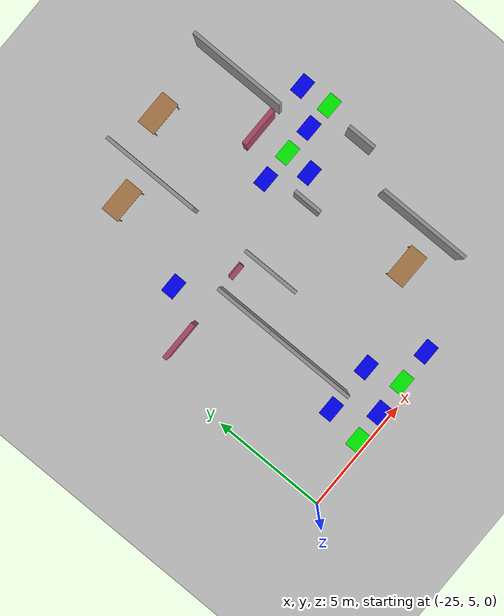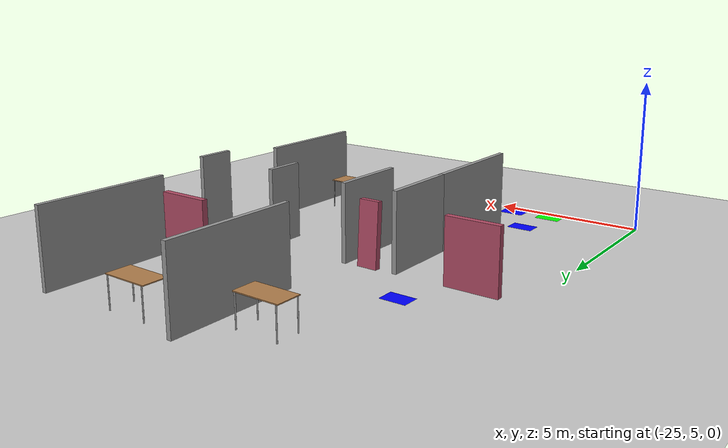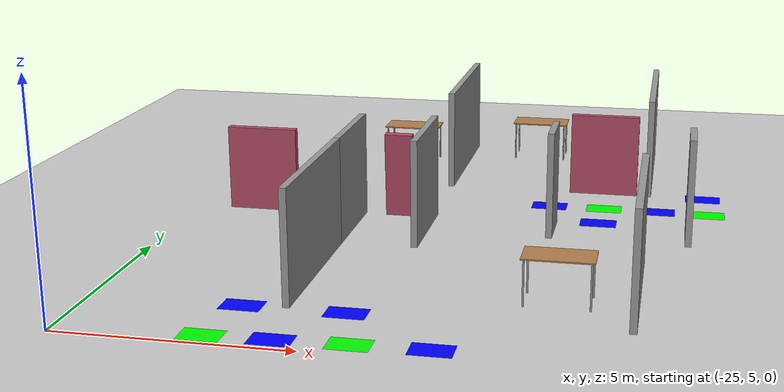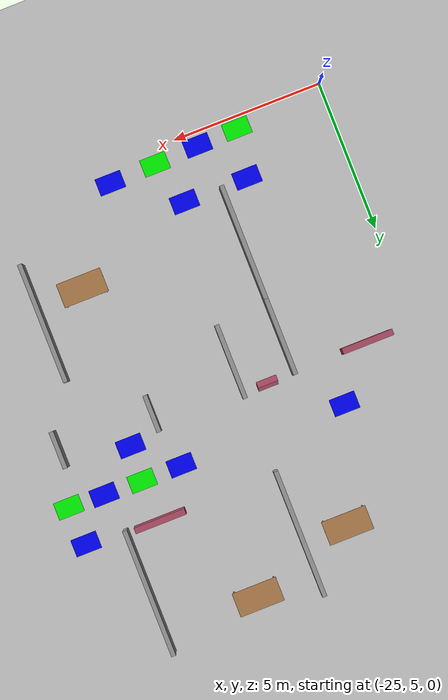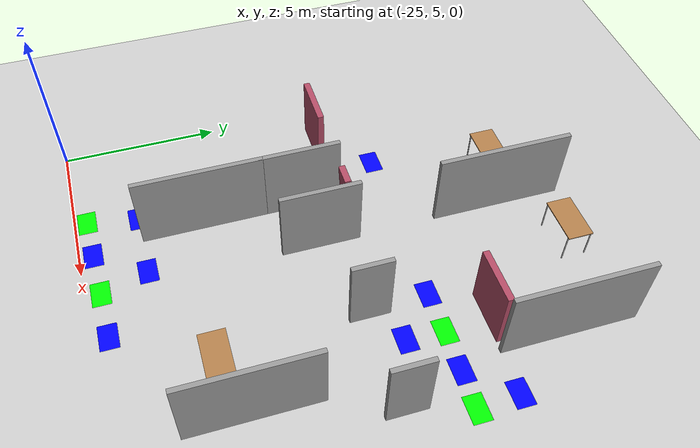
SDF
<sdf version="1.6">
 <world name="default">
  <model name="ground_plane">
   <pose>0 0 0.001 0 -0 0</pose>
   <static>1</static>
   <link name="link">
    <collision name="collision">
     <geometry><plane><normal>0 0 1</normal><size>100 100</size></plane></geometry>
     <surface><friction><ode><mu>100</mu><mu2>50</mu2></ode></friction></surface>
    </collision>
    <visual name="visual">
     <cast_shadows>0</cast_shadows>
     <geometry><plane><normal>0 0 1</normal><size>100 100</size></plane></geometry>
     <material>
      <script><uri>file://media/materials/scripts/gazebo.material</uri><name>Gazebo/Grey</name></script>
     </material>
    </visual>
   </link>
  </model>
  <model name="table">
   <static>1</static>
   <link name="link">
    <collision name="surface">
     <pose>0 0 1 0 -0 0</pose>
     <geometry><box><size>1.5 0.8 0.03</size></box></geometry>
     <surface><friction><ode><mu>0.6</mu><mu2>0.6</mu2></ode></friction></surface>
    </collision>
    <visual name="visual1">
     <pose>0 0 1 0 -0 0</pose>
     <geometry><box><size>1.5 0.8 0.03</size></box></geometry>
     <material>
      <script><uri>file://media/materials/scripts/gazebo.material</uri><name>Gazebo/Wood</name></script>
     </material>
    </visual>
    <collision name="front_left_leg">
     <pose>0.68 0.38 0.5 0 -0 0</pose>
     <geometry><cylinder><radius>0.02</radius><length>1</length></cylinder></geometry>
    </collision>
    <visual name="front_left_leg">
     <pose>0.68 0.38 0.5 0 -0 0</pose>
     <geometry><cylinder><radius>0.02</radius><length>1</length></cylinder></geometry>
     <material>
      <script><uri>file://media/materials/scripts/gazebo.material</uri><name>Gazebo/Grey</name></script>
     </material>
    </visual>
    <collision name="front_right_leg">
     <pose>0.68 -0.38 0.5 0 -0 0</pose>
     <geometry><cylinder><radius>0.02</radius><length>1</length></cylinder></geometry>
    </collision>
    <visual name="front_right_leg">
     <pose>0.68 -0.38 0.5 0 -0 0</pose>
     <geometry><cylinder><radius>0.02</radius><length>1</length></cylinder></geometry>
     <material>
      <script><uri>file://media/materials/scripts/gazebo.material</uri><name>Gazebo/Grey</name></script>
     </material>
    </visual>
    <collision name="back_right_leg">
     <pose>-0.68 -0.38 0.5 0 -0 0</pose>
     <geometry><cylinder><radius>0.02</radius><length>1</length></cylinder></geometry>
    </collision>
    <visual name="back_right_leg">
     <pose>-0.68 -0.38 0.5 0 -0 0</pose>
     <geometry><cylinder><radius>0.02</radius><length>1</length></cylinder></geometry>
     <material>
      <script><uri>file://media/materials/scripts/gazebo.material</uri><name>Gazebo/Grey</name></script>
     </material>
    </visual>
    <collision name="back_left_leg">
     <pose>-0.68 0.38 0.5 0 -0 0</pose>
     <geometry><cylinder><radius>0.02</radius><length>1</length></cylinder></geometry>
    </collision>
    <visual name="back_left_leg">
     <pose>-0.68 0.38 0.5 0 -0 0</pose>
     <geometry><cylinder><radius>0.02</radius><length>1</length></cylinder></geometry>
     <material>
      <script><uri>file://media/materials/scripts/gazebo.material</uri><name>Gazebo/Grey</name></script>
     </material>
    </visual>
   </link>
   <pose>-20.6493 18.5224 0.001 0 -0 0</pose>
  </model>
  <model name="table_0">
   <static>1</static>
   <link name="link">
    <collision name="surface">
     <pose>0 0 1 0 -0 0</pose>
     <geometry><box><size>1.5 0.8 0.03</size></box></geometry>
     <surface><friction><ode><mu>0.6</mu><mu2>0.6</mu2></ode></friction></surface>
    </collision>
    <visual name="visual1">
     <pose>0 0 1 0 -0 0</pose>
     <geometry><box><size>1.5 0.8 0.03</size></box></geometry>
     <material>
      <script><uri>file://media/materials/scripts/gazebo.material</uri><name>Gazebo/Wood</name></script>
     </material>
    </visual>
    <collision name="front_left_leg">
     <pose>0.68 0.38 0.5 0 -0 0</pose>
     <geometry><cylinder><radius>0.02</radius><length>1</length></cylinder></geometry>
    </collision>
    <visual name="front_left_leg">
     <pose>0.68 0.38 0.5 0 -0 0</pose>
     <geometry><cylinder><radius>0.02</radius><length>1</length></cylinder></geometry>
     <material>
      <script><uri>file://media/materials/scripts/gazebo.material</uri><name>Gazebo/Grey</name></script>
     </material>
    </visual>
    <collision name="front_right_leg">
     <pose>0.68 -0.38 0.5 0 -0 0</pose>
     <geometry><cylinder><radius>0.02</radius><length>1</length></cylinder></geometry>
    </collision>
    <visual name="front_right_leg">
     <pose>0.68 -0.38 0.5 0 -0 0</pose>
     <geometry><cylinder><radius>0.02</radius><length>1</length></cylinder></geometry>
     <material>
      <script><uri>file://media/materials/scripts/gazebo.material</uri><name>Gazebo/Grey</name></script>
     </material>
    </visual>
    <collision name="back_right_leg">
     <pose>-0.68 -0.38 0.5 0 -0 0</pose>
     <geometry><cylinder><radius>0.02</radius><length>1</length></cylinder></geometry>
    </collision>
    <visual name="back_right_leg">
     <pose>-0.68 -0.38 0.5 0 -0 0</pose>
     <geometry><cylinder><radius>0.02</radius><length>1</length></cylinder></geometry>
     <material>
      <script><uri>file://media/materials/scripts/gazebo.material</uri><name>Gazebo/Grey</name></script>
     </material>
    </visual>
    <collision name="back_left_leg">
     <pose>-0.68 0.38 0.5 0 -0 0</pose>
     <geometry><cylinder><radius>0.02</radius><length>1</length></cylinder></geometry>
    </collision>
    <visual name="back_left_leg">
     <pose>-0.68 0.38 0.5 0 -0 0</pose>
     <geometry><cylinder><radius>0.02</radius><length>1</length></cylinder></geometry>
     <material>
      <script><uri>file://media/materials/scripts/gazebo.material</uri><name>Gazebo/Grey</name></script>
     </material>
    </visual>
   </link>
   <pose>-17.1552 19.6086 0.001 0 -0 0</pose>
  </model>
  <model name="table_2">
   <static>1</static>
   <link name="link">
    <collision name="surface">
     <pose>0 0 1 0 -0 0</pose>
     <geometry><box><size>1.5 0.8 0.03</size></box></geometry>
     <surface><friction><ode><mu>0.6</mu><mu2>0.6</mu2></ode></friction></surface>
    </collision>
    <visual name="visual1">
     <pose>0 0 1 0 -0 0</pose>
     <geometry><box><size>1.5 0.8 0.03</size></box></geometry>
     <material>
      <script><uri>file://media/materials/scripts/gazebo.material</uri><name>Gazebo/Wood</name></script>
     </material>
    </visual>
    <collision name="front_left_leg">
     <pose>0.68 0.38 0.5 0 -0 0</pose>
     <geometry><cylinder><radius>0.02</radius><length>1</length></cylinder></geometry>
    </collision>
    <visual name="front_left_leg">
     <pose>0.68 0.38 0.5 0 -0 0</pose>
     <geometry><cylinder><radius>0.02</radius><length>1</length></cylinder></geometry>
     <material>
      <script><uri>file://media/materials/scripts/gazebo.material</uri><name>Gazebo/Grey</name></script>
     </material>
    </visual>
    <collision name="front_right_leg">
     <pose>0.68 -0.38 0.5 0 -0 0</pose>
     <geometry><cylinder><radius>0.02</radius><length>1</length></cylinder></geometry>
    </collision>
    <visual name="front_right_leg">
     <pose>0.68 -0.38 0.5 0 -0 0</pose>
     <geometry><cylinder><radius>0.02</radius><length>1</length></cylinder></geometry>
     <material>
      <script><uri>file://media/materials/scripts/gazebo.material</uri><name>Gazebo/Grey</name></script>
     </material>
    </visual>
    <collision name="back_right_leg">
     <pose>-0.68 -0.38 0.5 0 -0 0</pose>
     <geometry><cylinder><radius>0.02</radius><length>1</length></cylinder></geometry>
    </collision>
    <visual name="back_right_leg">
     <pose>-0.68 -0.38 0.5 0 -0 0</pose>
     <geometry><cylinder><radius>0.02</radius><length>1</length></cylinder></geometry>
     <material>
      <script><uri>file://media/materials/scripts/gazebo.material</uri><name>Gazebo/Grey</name></script>
     </material>
    </visual>
    <collision name="back_left_leg">
     <pose>-0.68 0.38 0.5 0 -0 0</pose>
     <geometry><cylinder><radius>0.02</radius><length>1</length></cylinder></geometry>
    </collision>
    <visual name="back_left_leg">
     <pose>-0.68 0.38 0.5 0 -0 0</pose>
     <geometry><cylinder><radius>0.02</radius><length>1</length></cylinder></geometry>
     <material>
      <script><uri>file://media/materials/scripts/gazebo.material</uri><name>Gazebo/Grey</name></script>
     </material>
    </visual>
   </link>
   <pose>-15.5399 8.3596 0.001 0 -0 0</pose>
  </model>
  <model name="intersection_1">
   <link name="link">
    <pose>0 0 0.001 0 -0 0</pose>
    <inertial>
     <mass>0.0352517</mass>
     <inertia>
      <ixx>0.000997067</ixx>
      <ixy>0</ixy>
      <ixz>0</ixz>
      <iyy>0.00220147</iyy>
      <iyz>0</iyz>
      <izz>0.0031692</izz>
     </inertia>
     <pose>0 0 0.001 0 -0 0</pose>
    </inertial>
    <visual name="visual">
     <geometry><box><size>0.862743 0.578289 1e-06</size></box></geometry>
     <material>
      <script><name>Gazebo/Grey</name><uri>file://media/materials/scripts/gazebo.material</uri></script>
      <ambient>0 0 1 1</ambient>
      <diffuse>0 0 1 1</diffuse>
      <specular>0 0 1 1</specular>
      <emissive>0 0 1 1</emissive>
      <shader type="vertex"><normal_map>__default__</normal_map></shader>
     </material>
     <pose>0 0 0.001 0 -0 0</pose>
    </visual>
    <collision name="collision">
     <pose>0 0 0.001 0 -0 0</pose>
     <geometry><box><size>0.862743 0.578289 0.000477</size></box></geometry>
     <surface>
      <friction>
       <ode><mu>1</mu><mu2>1</mu2><fdir1>0 0 0</fdir1><slip1>0</slip1><slip2>0</slip2></ode>
       <torsional>
        <coefficient>1</coefficient>
        <patch_radius>0</patch_radius>
        <surface_radius>0</surface_radius>
        <use_patch_radius>1</use_patch_radius>
        <ode><slip>0</slip></ode>
       </torsional>
      </friction>
      <bounce><restitution_coefficient>0</restitution_coefficient><threshold>1e+06</threshold></bounce>
      <contact>
       <collide_without_contact>0</collide_without_contact>
       <collide_without_contact_bitmask>1</collide_without_contact_bitmask>
       <collide_bitmask>1</collide_bitmask>
       <ode>
        <soft_cfm>0</soft_cfm>
        <soft_erp>0.2</soft_erp>
        <kp>1e+13</kp>
        <kd>1</kd>
        <max_vel>0.01</max_vel>
        <min_depth>0</min_depth>
       </ode>
       <bullet>
        <split_impulse>1</split_impulse>
        <split_impulse_penetration_threshold>-0.01</split_impulse_penetration_threshold>
        <soft_cfm>0</soft_cfm>
        <soft_erp>0.2</soft_erp>
        <kp>1e+13</kp>
        <kd>1</kd>
       </bullet>
      </contact>
     </surface>
    </collision>
   </link>
   <static>1</static>
   <pose>-21.7477 6.96498 0 0 -0 0</pose>
  </model>
  <model name="intersection_8">
   <link name="link">
    <pose>0 0 0.001 0 -0 0</pose>
    <inertial>
     <mass>0.0352517</mass>
     <inertia>
      <ixx>0.000997067</ixx>
      <ixy>0</ixy>
      <ixz>0</ixz>
      <iyy>0.00220147</iyy>
      <iyz>0</iyz>
      <izz>0.0031692</izz>
     </inertia>
     <pose>0 0 0.001 0 -0 0</pose>
    </inertial>
    <visual name="visual">
     <geometry><box><size>0.862743 0.578289 1e-06</size></box></geometry>
     <material>
      <script><name>Gazebo/Grey</name><uri>file://media/materials/scripts/gazebo.material</uri></script>
      <ambient>0 0 1 1</ambient>
      <diffuse>0 0 1 1</diffuse>
      <specular>0 0 1 1</specular>
      <emissive>0 0 1 1</emissive>
      <shader type="vertex"><normal_map>__default__</normal_map></shader>
     </material>
     <pose>0 0 0.001 0 -0 0</pose>
    </visual>
    <collision name="collision">
     <pose>0 0 0.001 0 -0 0</pose>
     <geometry><box><size>0.862743 0.578289 0.000477</size></box></geometry>
     <surface>
      <friction>
       <ode><mu>1</mu><mu2>1</mu2><fdir1>0 0 0</fdir1><slip1>0</slip1><slip2>0</slip2></ode>
       <torsional>
        <coefficient>1</coefficient>
        <patch_radius>0</patch_radius>
        <surface_radius>0</surface_radius>
        <use_patch_radius>1</use_patch_radius>
        <ode><slip>0</slip></ode>
       </torsional>
      </friction>
      <bounce><restitution_coefficient>0</restitution_coefficient><threshold>1e+06</threshold></bounce>
      <contact>
       <collide_without_contact>0</collide_without_contact>
       <collide_without_contact_bitmask>1</collide_without_contact_bitmask>
       <collide_bitmask>1</collide_bitmask>
       <ode>
        <soft_cfm>0</soft_cfm>
        <soft_erp>0.2</soft_erp>
        <kp>1e+13</kp>
        <kd>1</kd>
        <max_vel>0.01</max_vel>
        <min_depth>0</min_depth>
       </ode>
       <bullet>
        <split_impulse>1</split_impulse>
        <split_impulse_penetration_threshold>-0.01</split_impulse_penetration_threshold>
        <soft_cfm>0</soft_cfm>
        <soft_erp>0.2</soft_erp>
        <kp>1e+13</kp>
        <kd>1</kd>
       </bullet>
      </contact>
     </surface>
    </collision>
   </link>
   <static>1</static>
   <pose>-12.6212 16.0507 0 0 -0 0</pose>
  </model>
  <model name="intersection_9">
   <link name="link">
    <pose>0 0 0.001 0 -0 0</pose>
    <inertial>
     <mass>0.0352517</mass>
     <inertia>
      <ixx>0.000997067</ixx>
      <ixy>0</ixy>
      <ixz>0</ixz>
      <iyy>0.00220147</iyy>
      <iyz>0</iyz>
      <izz>0.0031692</izz>
     </inertia>
     <pose>0 0 0.001 0 -0 0</pose>
    </inertial>
    <visual name="visual">
     <geometry><box><size>0.862743 0.578289 1e-06</size></box></geometry>
     <material>
      <script><name>Gazebo/Grey</name><uri>file://media/materials/scripts/gazebo.material</uri></script>
      <ambient>0 0 1 1</ambient>
      <diffuse>0 0 1 1</diffuse>
      <specular>0 0 1 1</specular>
      <emissive>0 0 1 1</emissive>
      <shader type="vertex"><normal_map>__default__</normal_map></shader>
     </material>
     <pose>0 0 0.001 0 -0 0</pose>
    </visual>
    <collision name="collision">
     <pose>0 0 0.001 0 -0 0</pose>
     <geometry><box><size>0.862743 0.578289 0.000477</size></box></geometry>
     <surface>
      <friction>
       <ode><mu>1</mu><mu2>1</mu2><fdir1>0 0 0</fdir1><slip1>0</slip1><slip2>0</slip2></ode>
       <torsional>
        <coefficient>1</coefficient>
        <patch_radius>0</patch_radius>
        <surface_radius>0</surface_radius>
        <use_patch_radius>1</use_patch_radius>
        <ode><slip>0</slip></ode>
       </torsional>
      </friction>
      <bounce><restitution_coefficient>0</restitution_coefficient><threshold>1e+06</threshold></bounce>
      <contact>
       <collide_without_contact>0</collide_without_contact>
       <collide_without_contact_bitmask>1</collide_without_contact_bitmask>
       <collide_bitmask>1</collide_bitmask>
       <ode>
        <soft_cfm>0</soft_cfm>
        <soft_erp>0.2</soft_erp>
        <kp>1e+13</kp>
        <kd>1</kd>
        <max_vel>0.01</max_vel>
        <min_depth>0</min_depth>
       </ode>
       <bullet>
        <split_impulse>1</split_impulse>
        <split_impulse_penetration_threshold>-0.01</split_impulse_penetration_threshold>
        <soft_cfm>0</soft_cfm>
        <soft_erp>0.2</soft_erp>
        <kp>1e+13</kp>
        <kd>1</kd>
       </bullet>
      </contact>
     </surface>
    </collision>
   </link>
   <static>1</static>
   <pose>-15.1017 13.6368 0 0 -0 0</pose>
  </model>
  <model name="intersection_10">
   <link name="link">
    <pose>0 0 0.001 0 -0 0</pose>
    <inertial>
     <mass>0.0352517</mass>
     <inertia>
      <ixx>0.000997067</ixx>
      <ixy>0</ixy>
      <ixz>0</ixz>
      <iyy>0.00220147</iyy>
      <iyz>0</iyz>
      <izz>0.0031692</izz>
     </inertia>
     <pose>0 0 0.001 0 -0 0</pose>
    </inertial>
    <visual name="visual">
     <geometry><box><size>0.862743 0.578289 1e-06</size></box></geometry>
     <material>
      <script><name>Gazebo/Grey</name><uri>file://media/materials/scripts/gazebo.material</uri></script>
      <ambient>0 0 1 1</ambient>
      <diffuse>0 0 1 1</diffuse>
      <specular>0 0 1 1</specular>
      <emissive>0 0 1 1</emissive>
      <shader type="vertex"><normal_map>__default__</normal_map></shader>
     </material>
     <pose>0 0 0.001 0 -0 0</pose>
    </visual>
    <collision name="collision">
     <pose>0 0 0.001 0 -0 0</pose>
     <geometry><box><size>0.862743 0.578289 0.000477</size></box></geometry>
     <surface>
      <friction>
       <ode><mu>1</mu><mu2>1</mu2><fdir1>0 0 0</fdir1><slip1>0</slip1><slip2>0</slip2></ode>
       <torsional>
        <coefficient>1</coefficient>
        <patch_radius>0</patch_radius>
        <surface_radius>0</surface_radius>
        <use_patch_radius>1</use_patch_radius>
        <ode><slip>0</slip></ode>
       </torsional>
      </friction>
      <bounce><restitution_coefficient>0</restitution_coefficient><threshold>1e+06</threshold></bounce>
      <contact>
       <collide_without_contact>0</collide_without_contact>
       <collide_without_contact_bitmask>1</collide_without_contact_bitmask>
       <collide_bitmask>1</collide_bitmask>
       <ode>
        <soft_cfm>0</soft_cfm>
        <soft_erp>0.2</soft_erp>
        <kp>1e+13</kp>
        <kd>1</kd>
        <max_vel>0.01</max_vel>
        <min_depth>0</min_depth>
       </ode>
       <bullet>
        <split_impulse>1</split_impulse>
        <split_impulse_penetration_threshold>-0.01</split_impulse_penetration_threshold>
        <soft_cfm>0</soft_cfm>
        <soft_erp>0.2</soft_erp>
        <kp>1e+13</kp>
        <kd>1</kd>
       </bullet>
      </contact>
     </surface>
    </collision>
   </link>
   <static>1</static>
   <pose>-19.5888 6.96185 0 0 -0 0</pose>
  </model>
  <model name="doorOutside_2_clone_0">
   <link name="link">
    <pose>0.155539 -0.366282 0.216958 0 -0 0</pose>
    <inertial>
     <mass>2.13199</mass>
     <inertia>
      <ixx>0.452656</ixx>
      <ixy>0</ixy>
      <ixz>0</ixz>
      <iyy>0.796738</iyy>
      <iyz>0</iyz>
      <izz>0.699414</izz>
     </inertia>
     <pose>0 0 0.001 0 -0 0</pose>
    </inertial>
    <visual name="visual">
     <geometry><box><size>1.71368 0.198843 2.05986</size></box></geometry>
     <material>
      <script><name>Gazebo/Grey</name><uri>file://media/materials/scripts/gazebo.material</uri></script>
      <ambient>0.7 0.3 0.4 1</ambient>
      <diffuse>0.7 0.7 0.7 1</diffuse>
      <specular>0.01 0.01 0.01 1</specular>
      <emissive>0 0 0 1</emissive>
      <shader type="vertex"><normal_map>__default__</normal_map></shader>
      <lighting>0</lighting>
     </material>
     <pose>0 0 0.001 0 -0 0</pose>
    </visual>
    <collision name="collision">
     <pose>0 0 0.001 0 -0 0</pose>
     <geometry><box><size>1.71368 0.198843 2.05986</size></box></geometry>
     <surface>
      <friction>
       <ode><mu>1</mu><mu2>1</mu2><fdir1>0 0 0</fdir1><slip1>0</slip1><slip2>0</slip2></ode>
       <torsional>
        <coefficient>1</coefficient>
        <patch_radius>0</patch_radius>
        <surface_radius>0</surface_radius>
        <use_patch_radius>1</use_patch_radius>
        <ode><slip>0</slip></ode>
       </torsional>
      </friction>
      <bounce><restitution_coefficient>0</restitution_coefficient><threshold>1e+06</threshold></bounce>
      <contact>
       <collide_without_contact>0</collide_without_contact>
       <collide_without_contact_bitmask>1</collide_without_contact_bitmask>
       <collide_bitmask>1</collide_bitmask>
       <ode>
        <soft_cfm>0</soft_cfm>
        <soft_erp>0.2</soft_erp>
        <kp>1e+13</kp>
        <kd>1</kd>
        <max_vel>0.01</max_vel>
        <min_depth>0</min_depth>
       </ode>
       <bullet>
        <split_impulse>1</split_impulse>
        <split_impulse_penetration_threshold>-0.01</split_impulse_penetration_threshold>
        <soft_cfm>0</soft_cfm>
        <soft_erp>0.2</soft_erp>
        <kp>1e+13</kp>
        <kd>1</kd>
       </bullet>
      </contact>
     </surface>
    </collision>
   </link>
   <static>0</static>
   <pose>-23.205 12.9224 0.811972 0 -0 3.14159</pose>
  </model>
  <model name="doorInside_1">
   <link name="link">
    <pose>0.712274 -0.220649 0.216958 0 -0 0</pose>
    <inertial>
     <mass>0.840612</mass>
     <inertia>
      <ixx>0.178476</ixx>
      <ixy>0</ixy>
      <ixz>0</ixz>
      <iyy>0.140406</iyy>
      <iyz>0</iyz>
      <izz>0.102032</izz>
     </inertia>
     <pose>0 0 0.001 0 -0 0</pose>
    </inertial>
    <visual name="visual">
     <geometry><box><size>0.675678 0.198843 2.05986</size></box></geometry>
     <material>
      <script><name>Gazebo/Grey</name><uri>file://media/materials/scripts/gazebo.material</uri></script>
      <ambient>0.7 0.3 0.4 1</ambient>
      <diffuse>0.7 0.7 0.7 1</diffuse>
      <specular>0.01 0.01 0.01 1</specular>
      <emissive>1 0 0 1</emissive>
      <shader type="vertex"><normal_map>__default__</normal_map></shader>
      <lighting>0</lighting>
     </material>
     <pose>0 0 0.001 0 -0 0</pose>
    </visual>
    <collision name="collision">
     <pose>0 0 0.001 0 -0 0</pose>
     <geometry><box><size>0.675678 0.198843 2.05986</size></box></geometry>
     <surface>
      <friction>
       <ode><mu>1</mu><mu2>1</mu2><fdir1>0 0 0</fdir1><slip1>0</slip1><slip2>0</slip2></ode>
       <torsional>
        <coefficient>1</coefficient>
        <patch_radius>0</patch_radius>
        <surface_radius>0</surface_radius>
        <use_patch_radius>1</use_patch_radius>
        <ode><slip>0</slip></ode>
       </torsional>
      </friction>
      <bounce><restitution_coefficient>0</restitution_coefficient><threshold>1e+06</threshold></bounce>
      <contact>
       <collide_without_contact>0</collide_without_contact>
       <collide_without_contact_bitmask>1</collide_without_contact_bitmask>
       <collide_bitmask>1</collide_bitmask>
       <ode>
        <soft_cfm>0</soft_cfm>
        <soft_erp>0.2</soft_erp>
        <kp>1e+13</kp>
        <kd>1</kd>
        <max_vel>0.01</max_vel>
        <min_depth>0</min_depth>
       </ode>
       <bullet>
        <split_impulse>1</split_impulse>
        <split_impulse_penetration_threshold>-0.01</split_impulse_penetration_threshold>
        <soft_cfm>0</soft_cfm>
        <soft_erp>0.2</soft_erp>
        <kp>1e+13</kp>
        <kd>1</kd>
       </bullet>
      </contact>
     </surface>
    </collision>
   </link>
   <static>0</static>
   <pose>-20.6351 13.5899 0.830533 0.063079 -0 0</pose>
  </model>
  <model name="corridor_18">
   <link name="link">
    <pose>0 0 0.001 0 -0 0</pose>
    <inertial>
     <mass>0.0352517</mass>
     <inertia>
      <ixx>0.00099707</ixx>
      <ixy>0</ixy>
      <ixz>0</ixz>
      <iyy>0.00220147</iyy>
      <iyz>0</iyz>
      <izz>0.0031692</izz>
     </inertia>
     <pose>0 0 0.001 0 -0 0</pose>
    </inertial>
    <visual name="visual">
     <geometry><box><size>0.862743 0.578289 1e-06</size></box></geometry>
     <material>
      <script><name>Gazebo/Grey</name><uri>file://media/materials/scripts/gazebo.material</uri></script>
      <ambient>0 1 0 1</ambient>
      <diffuse>0 1 0 1</diffuse>
      <specular>0 1 0 1</specular>
      <emissive>0 1 0 1</emissive>
      <shader type="vertex"><normal_map>__default__</normal_map></shader>
     </material>
     <pose>0 0 0.001 0 -0 0</pose>
    </visual>
    <collision name="collision">
     <pose>0 0 0.001 0 -0 0</pose>
     <geometry><box><size>0.862743 0.578289 0.000477</size></box></geometry>
     <surface>
      <friction>
       <ode><mu>1</mu><mu2>1</mu2><fdir1>0 0 0</fdir1><slip1>0</slip1><slip2>0</slip2></ode>
       <torsional>
        <coefficient>1</coefficient>
        <patch_radius>0</patch_radius>
        <surface_radius>0</surface_radius>
        <use_patch_radius>1</use_patch_radius>
        <ode><slip>0</slip></ode>
       </torsional>
      </friction>
      <bounce><restitution_coefficient>0</restitution_coefficient><threshold>1e+06</threshold></bounce>
      <contact>
       <collide_without_contact>0</collide_without_contact>
       <collide_without_contact_bitmask>1</collide_without_contact_bitmask>
       <collide_bitmask>1</collide_bitmask>
       <ode>
        <soft_cfm>0</soft_cfm>
        <soft_erp>0.2</soft_erp>
        <kp>1e+13</kp>
        <kd>1</kd>
        <max_vel>0.01</max_vel>
        <min_depth>0</min_depth>
       </ode>
       <bullet>
        <split_impulse>1</split_impulse>
        <split_impulse_penetration_threshold>-0.01</split_impulse_penetration_threshold>
        <soft_cfm>0</soft_cfm>
        <soft_erp>0.2</soft_erp>
        <kp>1e+13</kp>
        <kd>1</kd>
       </bullet>
      </contact>
     </surface>
    </collision>
   </link>
   <static>1</static>
   <pose>-12.5336 14.7447 0 0 -0 0</pose>
  </model>
  <model name="corridor_19">
   <link name="link">
    <pose>0 0 0.001 0 -0 0</pose>
    <inertial>
     <mass>0.0352517</mass>
     <inertia>
      <ixx>0.00099707</ixx>
      <ixy>0</ixy>
      <ixz>0</ixz>
      <iyy>0.00220147</iyy>
      <iyz>0</iyz>
      <izz>0.0031692</izz>
     </inertia>
     <pose>0 0 0.001 0 -0 0</pose>
    </inertial>
    <visual name="visual">
     <geometry><box><size>0.862743 0.578289 1e-06</size></box></geometry>
     <material>
      <script><name>Gazebo/Grey</name><uri>file://media/materials/scripts/gazebo.material</uri></script>
      <ambient>0 1 0 1</ambient>
      <diffuse>0 1 0 1</diffuse>
      <specular>0 1 0 1</specular>
      <emissive>0 1 0 1</emissive>
      <shader type="vertex"><normal_map>__default__</normal_map></shader>
     </material>
     <pose>0 0 0.001 0 -0 0</pose>
    </visual>
    <collision name="collision">
     <pose>0 0 0.001 0 -0 0</pose>
     <geometry><box><size>0.862743 0.578289 0.000477</size></box></geometry>
     <surface>
      <friction>
       <ode><mu>1</mu><mu2>1</mu2><fdir1>0 0 0</fdir1><slip1>0</slip1><slip2>0</slip2></ode>
       <torsional>
        <coefficient>1</coefficient>
        <patch_radius>0</patch_radius>
        <surface_radius>0</surface_radius>
        <use_patch_radius>1</use_patch_radius>
        <ode><slip>0</slip></ode>
       </torsional>
      </friction>
      <bounce><restitution_coefficient>0</restitution_coefficient><threshold>1e+06</threshold></bounce>
      <contact>
       <collide_without_contact>0</collide_without_contact>
       <collide_without_contact_bitmask>1</collide_without_contact_bitmask>
       <collide_bitmask>1</collide_bitmask>
       <ode>
        <soft_cfm>0</soft_cfm>
        <soft_erp>0.2</soft_erp>
        <kp>1e+13</kp>
        <kd>1</kd>
        <max_vel>0.01</max_vel>
        <min_depth>0</min_depth>
       </ode>
       <bullet>
        <split_impulse>1</split_impulse>
        <split_impulse_penetration_threshold>-0.01</split_impulse_penetration_threshold>
        <soft_cfm>0</soft_cfm>
        <soft_erp>0.2</soft_erp>
        <kp>1e+13</kp>
        <kd>1</kd>
       </bullet>
      </contact>
     </surface>
    </collision>
   </link>
   <static>1</static>
   <pose>-15.0379 14.8136 0 0 -0 0</pose>
  </model>
  <model name="corridor_20">
   <link name="link">
    <pose>0 0 0.001 0 -0 0</pose>
    <inertial>
     <mass>0.0352517</mass>
     <inertia>
      <ixx>0.00099707</ixx>
      <ixy>0</ixy>
      <ixz>0</ixz>
      <iyy>0.00220147</iyy>
      <iyz>0</iyz>
      <izz>0.0031692</izz>
     </inertia>
     <pose>0 0 0.001 0 -0 0</pose>
    </inertial>
    <visual name="visual">
     <geometry><box><size>0.862743 0.578289 1e-06</size></box></geometry>
     <material>
      <script><name>Gazebo/Grey</name><uri>file://media/materials/scripts/gazebo.material</uri></script>
      <ambient>0 1 0 1</ambient>
      <diffuse>0 1 0 1</diffuse>
      <specular>0 1 0 1</specular>
      <emissive>0 1 0 1</emissive>
      <shader type="vertex"><normal_map>__default__</normal_map></shader>
     </material>
     <pose>0 0 0.001 0 -0 0</pose>
    </visual>
    <collision name="collision">
     <pose>0 0 0.001 0 -0 0</pose>
     <geometry><box><size>0.862743 0.578289 0.000477</size></box></geometry>
     <surface>
      <friction>
       <ode><mu>1</mu><mu2>1</mu2><fdir1>0 0 0</fdir1><slip1>0</slip1><slip2>0</slip2></ode>
       <torsional>
        <coefficient>1</coefficient>
        <patch_radius>0</patch_radius>
        <surface_radius>0</surface_radius>
        <use_patch_radius>1</use_patch_radius>
        <ode><slip>0</slip></ode>
       </torsional>
      </friction>
      <bounce><restitution_coefficient>0</restitution_coefficient><threshold>1e+06</threshold></bounce>
      <contact>
       <collide_without_contact>0</collide_without_contact>
       <collide_without_contact_bitmask>1</collide_without_contact_bitmask>
       <collide_bitmask>1</collide_bitmask>
       <ode>
        <soft_cfm>0</soft_cfm>
        <soft_erp>0.2</soft_erp>
        <kp>1e+13</kp>
        <kd>1</kd>
        <max_vel>0.01</max_vel>
        <min_depth>0</min_depth>
       </ode>
       <bullet>
        <split_impulse>1</split_impulse>
        <split_impulse_penetration_threshold>-0.01</split_impulse_penetration_threshold>
        <soft_cfm>0</soft_cfm>
        <soft_erp>0.2</soft_erp>
        <kp>1e+13</kp>
        <kd>1</kd>
       </bullet>
      </contact>
     </surface>
    </collision>
   </link>
   <static>1</static>
   <pose>-19.1477 5.48918 0 0 -0 0</pose>
  </model>
  <model name="corridor_21">
   <link name="link">
    <pose>0 0 0.001 0 -0 0</pose>
    <inertial>
     <mass>0.0352517</mass>
     <inertia>
      <ixx>0.00099707</ixx>
      <ixy>0</ixy>
      <ixz>0</ixz>
      <iyy>0.00220147</iyy>
      <iyz>0</iyz>
      <izz>0.0031692</izz>
     </inertia>
     <pose>0 0 0.001 0 -0 0</pose>
    </inertial>
    <visual name="visual">
     <geometry><box><size>0.862743 0.578289 1e-06</size></box></geometry>
     <material>
      <script><name>Gazebo/Grey</name><uri>file://media/materials/scripts/gazebo.material</uri></script>
      <ambient>0 1 0 1</ambient>
      <diffuse>0 1 0 1</diffuse>
      <specular>0 1 0 1</specular>
      <emissive>0 1 0 1</emissive>
      <shader type="vertex"><normal_map>__default__</normal_map></shader>
     </material>
     <pose>0 0 0.001 0 -0 0</pose>
    </visual>
    <collision name="collision">
     <pose>0 0 0.001 0 -0 0</pose>
     <geometry><box><size>0.862743 0.578289 0.000477</size></box></geometry>
     <surface>
      <friction>
       <ode><mu>1</mu><mu2>1</mu2><fdir1>0 0 0</fdir1><slip1>0</slip1><slip2>0</slip2></ode>
       <torsional>
        <coefficient>1</coefficient>
        <patch_radius>0</patch_radius>
        <surface_radius>0</surface_radius>
        <use_patch_radius>1</use_patch_radius>
        <ode><slip>0</slip></ode>
       </torsional>
      </friction>
      <bounce><restitution_coefficient>0</restitution_coefficient><threshold>1e+06</threshold></bounce>
      <contact>
       <collide_without_contact>0</collide_without_contact>
       <collide_without_contact_bitmask>1</collide_without_contact_bitmask>
       <collide_bitmask>1</collide_bitmask>
       <ode>
        <soft_cfm>0</soft_cfm>
        <soft_erp>0.2</soft_erp>
        <kp>1e+13</kp>
        <kd>1</kd>
        <max_vel>0.01</max_vel>
        <min_depth>0</min_depth>
       </ode>
       <bullet>
        <split_impulse>1</split_impulse>
        <split_impulse_penetration_threshold>-0.01</split_impulse_penetration_threshold>
        <soft_cfm>0</soft_cfm>
        <soft_erp>0.2</soft_erp>
        <kp>1e+13</kp>
        <kd>1</kd>
       </bullet>
      </contact>
     </surface>
    </collision>
   </link>
   <static>1</static>
   <pose>-22.0183 5.38077 0 0 -0 0</pose>
  </model>
  <model name="intersection_36">
   <link name="link">
    <pose>0 0 0.001 0 -0 0</pose>
    <inertial>
     <mass>0.0352517</mass>
     <inertia>
      <ixx>0.000997067</ixx>
      <ixy>0</ixy>
      <ixz>0</ixz>
      <iyy>0.00220147</iyy>
      <iyz>0</iyz>
      <izz>0.0031692</izz>
     </inertia>
     <pose>0 0 0.001 0 -0 0</pose>
    </inertial>
    <visual name="visual">
     <geometry><box><size>0.862743 0.578289 1e-06</size></box></geometry>
     <material>
      <script><name>Gazebo/Grey</name><uri>file://media/materials/scripts/gazebo.material</uri></script>
      <ambient>0 0 1 1</ambient>
      <diffuse>0 0 1 1</diffuse>
      <specular>0 0 1 1</specular>
      <emissive>0 0 1 1</emissive>
      <shader type="vertex"><normal_map>__default__</normal_map></shader>
     </material>
     <pose>0 0 0.001 0 -0 0</pose>
    </visual>
    <collision name="collision">
     <pose>0 0 0.001 0 -0 0</pose>
     <geometry><box><size>0.862743 0.578289 0.000477</size></box></geometry>
     <surface>
      <friction>
       <ode><mu>1</mu><mu2>1</mu2><fdir1>0 0 0</fdir1><slip1>0</slip1><slip2>0</slip2></ode>
       <torsional>
        <coefficient>1</coefficient>
        <patch_radius>0</patch_radius>
        <surface_radius>0</surface_radius>
        <use_patch_radius>1</use_patch_radius>
        <ode><slip>0</slip></ode>
       </torsional>
      </friction>
      <bounce><restitution_coefficient>0</restitution_coefficient><threshold>1e+06</threshold></bounce>
      <contact>
       <collide_without_contact>0</collide_without_contact>
       <collide_without_contact_bitmask>1</collide_without_contact_bitmask>
       <collide_bitmask>1</collide_bitmask>
       <ode>
        <soft_cfm>0</soft_cfm>
        <soft_erp>0.2</soft_erp>
        <kp>1e+13</kp>
        <kd>1</kd>
        <max_vel>0.01</max_vel>
        <min_depth>0</min_depth>
       </ode>
       <bullet>
        <split_impulse>1</split_impulse>
        <split_impulse_penetration_threshold>-0.01</split_impulse_penetration_threshold>
        <soft_cfm>0</soft_cfm>
        <soft_erp>0.2</soft_erp>
        <kp>1e+13</kp>
        <kd>1</kd>
       </bullet>
      </contact>
     </surface>
    </collision>
   </link>
   <static>1</static>
   <pose>-20.643 5.42424 0 0 -0 0</pose>
  </model>
  <model name="intersection_39">
   <link name="link">
    <pose>0 0 0.001 0 -0 0</pose>
    <inertial>
     <mass>0.0352517</mass>
     <inertia>
      <ixx>0.000997067</ixx>
      <ixy>0</ixy>
      <ixz>0</ixz>
      <iyy>0.00220147</iyy>
      <iyz>0</iyz>
      <izz>0.0031692</izz>
     </inertia>
     <pose>0 0 0.001 0 -0 0</pose>
    </inertial>
    <visual name="visual">
     <geometry><box><size>0.862743 0.578289 1e-06</size></box></geometry>
     <material>
      <script><name>Gazebo/Grey</name><uri>file://media/materials/scripts/gazebo.material</uri></script>
      <ambient>0 0 1 1</ambient>
      <diffuse>0 0 1 1</diffuse>
      <specular>0 0 1 1</specular>
      <emissive>0 0 1 1</emissive>
      <shader type="vertex"><normal_map>__default__</normal_map></shader>
     </material>
     <pose>0 0 0.001 0 -0 0</pose>
    </visual>
    <collision name="collision">
     <pose>0 0 0.001 0 -0 0</pose>
     <geometry><box><size>0.862743 0.578289 0.000477</size></box></geometry>
     <surface>
      <friction>
       <ode><mu>1</mu><mu2>1</mu2><fdir1>0 0 0</fdir1><slip1>0</slip1><slip2>0</slip2></ode>
       <torsional>
        <coefficient>1</coefficient>
        <patch_radius>0</patch_radius>
        <surface_radius>0</surface_radius>
        <use_patch_radius>1</use_patch_radius>
        <ode><slip>0</slip></ode>
       </torsional>
      </friction>
      <bounce><restitution_coefficient>0</restitution_coefficient><threshold>1e+06</threshold></bounce>
      <contact>
       <collide_without_contact>0</collide_without_contact>
       <collide_without_contact_bitmask>1</collide_without_contact_bitmask>
       <collide_bitmask>1</collide_bitmask>
       <ode>
        <soft_cfm>0</soft_cfm>
        <soft_erp>0.2</soft_erp>
        <kp>1e+13</kp>
        <kd>1</kd>
        <max_vel>0.01</max_vel>
        <min_depth>0</min_depth>
       </ode>
       <bullet>
        <split_impulse>1</split_impulse>
        <split_impulse_penetration_threshold>-0.01</split_impulse_penetration_threshold>
        <soft_cfm>0</soft_cfm>
        <soft_erp>0.2</soft_erp>
        <kp>1e+13</kp>
        <kd>1</kd>
       </bullet>
      </contact>
     </surface>
    </collision>
   </link>
   <static>1</static>
   <pose>-17.5898 5.53119 0 0 -0 0</pose>
  </model>
  <model name="intersection_45">
   <link name="link">
    <pose>0 0 0.001 0 -0 0</pose>
    <inertial>
     <mass>0.0352517</mass>
     <inertia>
      <ixx>0.000997067</ixx>
      <ixy>0</ixy>
      <ixz>0</ixz>
      <iyy>0.00220147</iyy>
      <iyz>0</iyz>
      <izz>0.0031692</izz>
     </inertia>
     <pose>0 0 0.001 0 -0 0</pose>
    </inertial>
    <visual name="visual">
     <geometry><box><size>0.862743 0.578289 1e-06</size></box></geometry>
     <material>
      <script><name>Gazebo/Grey</name><uri>file://media/materials/scripts/gazebo.material</uri></script>
      <ambient>0 0 1 1</ambient>
      <diffuse>0 0 1 1</diffuse>
      <specular>0 0 1 1</specular>
      <emissive>0 0 1 1</emissive>
      <shader type="vertex"><normal_map>__default__</normal_map></shader>
     </material>
     <pose>0 0 0.001 0 -0 0</pose>
    </visual>
    <collision name="collision">
     <pose>0 0 0.001 0 -0 0</pose>
     <geometry><box><size>0.862743 0.578289 0.000477</size></box></geometry>
     <surface>
      <friction>
       <ode><mu>1</mu><mu2>1</mu2><fdir1>0 0 0</fdir1><slip1>0</slip1><slip2>0</slip2></ode>
       <torsional>
        <coefficient>1</coefficient>
        <patch_radius>0</patch_radius>
        <surface_radius>0</surface_radius>
        <use_patch_radius>1</use_patch_radius>
        <ode><slip>0</slip></ode>
       </torsional>
      </friction>
      <bounce><restitution_coefficient>0</restitution_coefficient><threshold>1e+06</threshold></bounce>
      <contact>
       <collide_without_contact>0</collide_without_contact>
       <collide_without_contact_bitmask>1</collide_without_contact_bitmask>
       <collide_bitmask>1</collide_bitmask>
       <ode>
        <soft_cfm>0</soft_cfm>
        <soft_erp>0.2</soft_erp>
        <kp>1e+13</kp>
        <kd>1</kd>
        <max_vel>0.01</max_vel>
        <min_depth>0</min_depth>
       </ode>
       <bullet>
        <split_impulse>1</split_impulse>
        <split_impulse_penetration_threshold>-0.01</split_impulse_penetration_threshold>
        <soft_cfm>0</soft_cfm>
        <soft_erp>0.2</soft_erp>
        <kp>1e+13</kp>
        <kd>1</kd>
       </bullet>
      </contact>
     </surface>
    </collision>
   </link>
   <static>1</static>
   <pose>-13.7349 14.7893 0 0 -0 0</pose>
  </model>
  <model name="intersection_46">
   <link name="link">
    <pose>0 0 0.001 0 -0 0</pose>
    <inertial>
     <mass>0.0352517</mass>
     <inertia>
      <ixx>0.000997067</ixx>
      <ixy>0</ixy>
      <ixz>0</ixz>
      <iyy>0.00220147</iyy>
      <iyz>0</iyz>
      <izz>0.0031692</izz>
     </inertia>
     <pose>0 0 0.001 0 -0 0</pose>
    </inertial>
    <visual name="visual">
     <geometry><box><size>0.862743 0.578289 1e-06</size></box></geometry>
     <material>
      <script><name>Gazebo/Grey</name><uri>file://media/materials/scripts/gazebo.material</uri></script>
      <ambient>0 0 1 1</ambient>
      <diffuse>0 0 1 1</diffuse>
      <specular>0 0 1 1</specular>
      <emissive>0 0 1 1</emissive>
      <shader type="vertex"><normal_map>__default__</normal_map></shader>
     </material>
     <pose>0 0 0.001 0 -0 0</pose>
    </visual>
    <collision name="collision">
     <pose>0 0 0.001 0 -0 0</pose>
     <geometry><box><size>0.862743 0.578289 0.000477</size></box></geometry>
     <surface>
      <friction>
       <ode><mu>1</mu><mu2>1</mu2><fdir1>0 0 0</fdir1><slip1>0</slip1><slip2>0</slip2></ode>
       <torsional>
        <coefficient>1</coefficient>
        <patch_radius>0</patch_radius>
        <surface_radius>0</surface_radius>
        <use_patch_radius>1</use_patch_radius>
        <ode><slip>0</slip></ode>
       </torsional>
      </friction>
      <bounce><restitution_coefficient>0</restitution_coefficient><threshold>1e+06</threshold></bounce>
      <contact>
       <collide_without_contact>0</collide_without_contact>
       <collide_without_contact_bitmask>1</collide_without_contact_bitmask>
       <collide_bitmask>1</collide_bitmask>
       <ode>
        <soft_cfm>0</soft_cfm>
        <soft_erp>0.2</soft_erp>
        <kp>1e+13</kp>
        <kd>1</kd>
        <max_vel>0.01</max_vel>
        <min_depth>0</min_depth>
       </ode>
       <bullet>
        <split_impulse>1</split_impulse>
        <split_impulse_penetration_threshold>-0.01</split_impulse_penetration_threshold>
        <soft_cfm>0</soft_cfm>
        <soft_erp>0.2</soft_erp>
        <kp>1e+13</kp>
        <kd>1</kd>
       </bullet>
      </contact>
     </surface>
    </collision>
   </link>
   <static>1</static>
   <pose>-16.3943 14.8094 0 0 -0 0</pose>
  </model>
  <model name="intersection_56">
   <link name="link">
    <pose>0 0 0.001 0 -0 0</pose>
    <inertial>
     <mass>0.0352517</mass>
     <inertia>
      <ixx>0.000997067</ixx>
      <ixy>0</ixy>
      <ixz>0</ixz>
      <iyy>0.00220147</iyy>
      <iyz>0</iyz>
      <izz>0.0031692</izz>
     </inertia>
     <pose>0 0 0.001 0 -0 0</pose>
    </inertial>
    <visual name="visual">
     <geometry><box><size>0.862743 0.578289 1e-06</size></box></geometry>
     <material>
      <script><name>Gazebo/Grey</name><uri>file://media/materials/scripts/gazebo.material</uri></script>
      <ambient>0 0 1 1</ambient>
      <diffuse>0 0 1 1</diffuse>
      <specular>0 0 1 1</specular>
      <emissive>0 0 1 1</emissive>
      <shader type="vertex"><normal_map>__default__</normal_map></shader>
     </material>
     <pose>0 0 0.001 0 -0 0</pose>
    </visual>
    <collision name="collision">
     <pose>0 0 0.001 0 -0 0</pose>
     <geometry><box><size>0.862743 0.578289 0.000477</size></box></geometry>
     <surface>
      <friction>
       <ode><mu>1</mu><mu2>1</mu2><fdir1>0 0 0</fdir1><slip1>0</slip1><slip2>0</slip2></ode>
       <torsional>
        <coefficient>1</coefficient>
        <patch_radius>0</patch_radius>
        <surface_radius>0</surface_radius>
        <use_patch_radius>1</use_patch_radius>
        <ode><slip>0</slip></ode>
       </torsional>
      </friction>
      <bounce><restitution_coefficient>0</restitution_coefficient><threshold>1e+06</threshold></bounce>
      <contact>
       <collide_without_contact>0</collide_without_contact>
       <collide_without_contact_bitmask>1</collide_without_contact_bitmask>
       <collide_bitmask>1</collide_bitmask>
       <ode>
        <soft_cfm>0</soft_cfm>
        <soft_erp>0.2</soft_erp>
        <kp>1e+13</kp>
        <kd>1</kd>
        <max_vel>0.01</max_vel>
        <min_depth>0</min_depth>
       </ode>
       <bullet>
        <split_impulse>1</split_impulse>
        <split_impulse_penetration_threshold>-0.01</split_impulse_penetration_threshold>
        <soft_cfm>0</soft_cfm>
        <soft_erp>0.2</soft_erp>
        <kp>1e+13</kp>
        <kd>1</kd>
       </bullet>
      </contact>
     </surface>
    </collision>
   </link>
   <static>1</static>
   <pose>-22.0065 14.8941 0 0 -0 0</pose>
  </model>
  <model name="doorOutside_8">
   <link name="link">
    <pose>0.155539 -0.366282 0.216958 0 -0 0</pose>
    <inertial>
     <mass>2.13199</mass>
     <inertia>
      <ixx>0.452656</ixx>
      <ixy>0</ixy>
      <ixz>0</ixz>
      <iyy>0.796738</iyy>
      <iyz>0</iyz>
      <izz>0.699414</izz>
     </inertia>
    </inertial>
    <visual name="visual">
     <geometry><box><size>1.71368 0.198843 2.05986</size></box></geometry>
     <material>
      <script><name>Gazebo/Grey</name><uri>file://media/materials/scripts/gazebo.material</uri></script>
      <ambient>0.7 0.3 0.4 1</ambient>
      <diffuse>0.7 0.7 0.7 1</diffuse>
      <specular>0.01 0.01 0.01 1</specular>
      <emissive>0 0 0 1</emissive>
      <shader type="vertex"><normal_map>__default__</normal_map></shader>
      <lighting>0</lighting>
     </material>
    </visual>
    <collision name="collision">
     <geometry><box><size>1.71368 0.198843 2.05986</size></box></geometry>
     <surface>
      <friction>
       <ode><mu>1</mu><mu2>1</mu2><fdir1>0 0 0</fdir1><slip1>0</slip1><slip2>0</slip2></ode>
       <torsional>
        <coefficient>1</coefficient>
        <patch_radius>0</patch_radius>
        <surface_radius>0</surface_radius>
        <use_patch_radius>1</use_patch_radius>
        <ode><slip>0</slip></ode>
       </torsional>
      </friction>
      <bounce><restitution_coefficient>0</restitution_coefficient><threshold>1e+06</threshold></bounce>
      <contact>
       <collide_without_contact>0</collide_without_contact>
       <collide_without_contact_bitmask>1</collide_without_contact_bitmask>
       <collide_bitmask>1</collide_bitmask>
       <ode>
        <soft_cfm>0</soft_cfm>
        <soft_erp>0.2</soft_erp>
        <kp>1e+13</kp>
        <kd>1</kd>
        <max_vel>0.01</max_vel>
        <min_depth>0</min_depth>
       </ode>
       <bullet>
        <split_impulse>1</split_impulse>
        <split_impulse_penetration_threshold>-0.01</split_impulse_penetration_threshold>
        <soft_cfm>0</soft_cfm>
        <soft_erp>0.2</soft_erp>
        <kp>1e+13</kp>
        <kd>1</kd>
       </bullet>
      </contact>
     </surface>
    </collision>
   </link>
   <static>0</static>
   <pose>-15.3019 16.5446 0.812972 0 -0 4.9e-05</pose>
  </model>
  <model name="Se1_cut">
   <pose>3.62364 13.9276 0 0 -0 0</pose>
   <link name="Wall_20">
    <collision name="Wall_20_Collision">
     <geometry><box><size>2.57604 0.15 2.5</size></box></geometry>
     <pose>0 0 1.25 0 -0 0</pose>
    </collision>
    <visual name="Wall_20_Visual">
     <pose>0 0 1.25 0 -0 0</pose>
     <geometry><box><size>2.57604 0.15 2.5</size></box></geometry>
     <material>
      <script><uri>file://media/materials/scripts/gazebo.material</uri><name>Gazebo/Grey</name></script>
      <ambient>1 1 1 1</ambient>
     </material>
    </visual>
    <pose>-24.4704 -1.79415 0 0 0 -1.5708</pose>
   </link>
   <link name="Wall_23">
    <collision name="Wall_23_Collision">
     <geometry><box><size>2.5 0.15 2.5</size></box></geometry>
     <pose>0 0 1.25 0 -0 0</pose>
    </collision>
    <visual name="Wall_23_Visual">
     <pose>0 0 1.25 0 -0 0</pose>
     <geometry><box><size>2.5 0.15 2.5</size></box></geometry>
     <material>
      <script><uri>file://media/materials/scripts/gazebo.material</uri><name>Gazebo/Grey</name></script>
      <ambient>1 1 1 1</ambient>
     </material>
    </visual>
    <pose>-22.711 -1.63352 0 0 0 -1.5708</pose>
   </link>
   <link name="Wall_25">
    <collision name="Wall_25_Collision">
     <geometry><box><size>1.25 0.15 2.5</size></box></geometry>
     <pose>0 0 1.25 0 -0 0</pose>
    </collision>
    <visual name="Wall_25_Visual">
     <pose>0 0 1.25 0 -0 0</pose>
     <geometry><box><size>1.25 0.15 2.5</size></box></geometry>
     <material>
      <script><uri>file://media/materials/scripts/gazebo.material</uri><name>Gazebo/Grey</name></script>
      <ambient>1 1 1 1</ambient>
     </material>
    </visual>
    <pose>-19.781 -1.01852 0 0 0 -1.5708</pose>
   </link>
   <link name="Wall_27">
    <collision name="Wall_27_Collision">
     <geometry><box><size>1.25 0.15 2.5</size></box></geometry>
     <pose>0 0 1.25 0 -0 0</pose>
    </collision>
    <visual name="Wall_27_Visual">
     <pose>0 0 1.25 0 -0 0</pose>
     <geometry><box><size>1.25 0.15 2.5</size></box></geometry>
     <material>
      <script><uri>file://media/materials/scripts/gazebo.material</uri><name>Gazebo/Grey</name></script>
      <ambient>1 1 1 1</ambient>
     </material>
    </visual>
    <pose>-16.601 -1.02852 0 0 0 -1.5708</pose>
   </link>
   <link name="Wall_49">
    <collision name="Wall_49_Collision">
     <geometry><box><size>4.25 0.15 2.5</size></box></geometry>
     <pose>0 0 1.25 0 -0 0</pose>
    </collision>
    <visual name="Wall_49_Visual">
     <pose>0 0 1.25 0 -0 0</pose>
     <geometry><box><size>4.25 0.15 2.5</size></box></geometry>
     <material>
      <script><uri>file://media/materials/scripts/gazebo.material</uri><name>Gazebo/Grey</name></script>
      <ambient>1 1 1 1</ambient>
     </material>
    </visual>
    <pose>-22.7583 4.23959 0 0 0 -1.5708</pose>
   </link>
   <link name="Wall_51">
    <collision name="Wall_51_Collision">
     <geometry><box><size>4.25 0.15 2.5</size></box></geometry>
     <pose>0 0 1.25 0 -0 0</pose>
    </collision>
    <visual name="Wall_51_Visual">
     <pose>0 0 1.25 0 -0 0</pose>
     <geometry><box><size>4.25 0.15 2.5</size></box></geometry>
     <material>
      <script><uri>file://media/materials/scripts/gazebo.material</uri><name>Gazebo/Grey</name></script>
      <ambient>1 1 1 1</ambient>
     </material>
    </visual>
    <pose>-17.6222 4.24038 0 0 0 -1.5708</pose>
   </link>
   <link name="Wall_87">
    <collision name="Wall_87_Collision">
     <geometry><box><size>4 0.15 2.5</size></box></geometry>
     <pose>0 0 1.25 0 -0 0</pose>
    </collision>
    <visual name="Wall_87_Visual">
     <pose>0 0 1.25 0 -0 0</pose>
     <geometry><box><size>4 0.15 2.5</size></box></geometry>
     <material>
      <script><uri>file://media/materials/scripts/gazebo.material</uri><name>Gazebo/Grey</name></script>
      <ambient>1 1 1 1</ambient>
     </material>
    </visual>
    <pose>-24.4704 -4.93217 0 0 0 -1.5708</pose>
   </link>
   <link name="Wall_89">
    <collision name="Wall_89_Collision">
     <geometry><box><size>4 0.15 2.5</size></box></geometry>
     <pose>0 0 1.25 0 -0 0</pose>
    </collision>
    <visual name="Wall_89_Visual">
     <pose>0 0 1.25 0 -0 0</pose>
     <geometry><box><size>4 0.15 2.5</size></box></geometry>
     <material>
      <script><uri>file://media/materials/scripts/gazebo.material</uri><name>Gazebo/Grey</name></script>
      <ambient>1 1 1 1</ambient>
     </material>
    </visual>
    <pose>-17.6091 -4.94228 0 0 0 -1.5708</pose>
   </link>
   <static>1</static>
  </model>
 </world>
</sdf>
